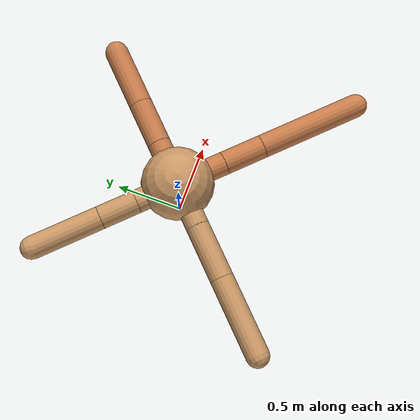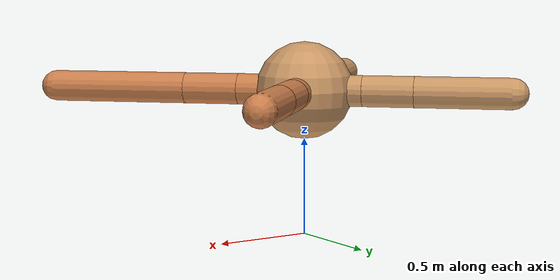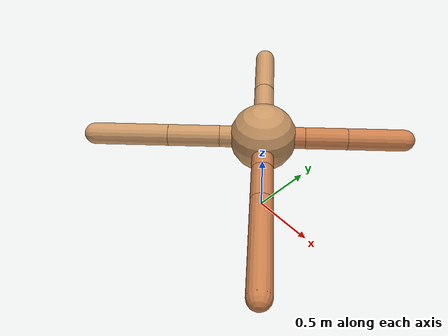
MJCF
<mujoco model="ant">
  <compiler angle="degree" coordinate="local" inertiafromgeom="true" />
  <option integrator="RK4" timestep="0.01" />
  <custom>
    <numeric data="0.0 0.0 0.55 1.0 0.0 0.0 0.0 0.0 1.0 0.0 -1.0 0.0 -1.0 0.0 1.0" name="init_qpos" />
  </custom>
  <default>
    <joint armature="1" damping="1" limited="true" />
    <geom conaffinity="0" condim="3" density="5.0" friction="1.5 0.1 0.1" margin="0.01" rgba="0.8 0.6 0.4 1" />
  </default>
  <worldbody>
    <body name="torso" pos="0 0 0.75">
      <geom name="torso_geom" pos="0 0 0" size="0.25" type="sphere" />

      <body name="front_left_leg" pos="0 0 0">
        <geom fromto="0.0 0.0 0.0 0.2193381365921722 0.2193381365921722 0.0" name="aux_1_geom" size="0.08" type="capsule" rgba=".8 .5 .3 1" />
        <body name="aux_1" pos="0.2193381365921722 0.2193381365921722 0.0">
          <joint axis="0 0 1" name="hip_1" pos="0.0 0.0 0.0" range="-40 40" type="hinge" />
          <geom fromto="0.0 0.0 0.0 0.22065655407092966 0.22065655407092966 0.0" name="left_leg_geom" size="0.08" type="capsule" rgba=".8 .5 .3 1" />
          <body pos="0.22065655407092966 0.22065655407092966 0.0" name="front_left_foot">
            <joint axis="-1 1 0" name="ankle_1" pos="0.0 0.0 0.0" range="30 100" type="hinge" />
            <geom fromto="0.0 0.0 0.0 0.2963039187735941 0.2963039187735941 0.0" name="left_ankle_geom" size="0.08" type="capsule" rgba=".8 .5 .3 1" />
          </body>
        </body>
      </body>
      <body name="front_right_leg" pos="0 0 0">
        <geom fromto="0.0 0.0 0.0 -0.21367990974631304 0.21367990974631304 0.0" name="aux_2_geom" size="0.08" type="capsule" />
        <body name="aux_2" pos="-0.21367990974631304 0.21367990974631304 0.0">
          <joint axis="0 0 1" name="hip_2" pos="0.0 0.0 0.0" range="-40 40" type="hinge" />
          <geom fromto="0.0 0.0 0.0 -0.186650274968583 0.186650274968583 0.0" name="right_leg_geom" size="0.08" type="capsule" />
          <body pos="-0.186650274968583 0.186650274968583 0.0" name="front_right_foot">
            <joint axis="1 1 0" name="ankle_2" pos="0.0 0.0 0.0" range="-100 -30" type="hinge" />
            <geom fromto="0.0 0.0 0.0 -0.3476233876846142 0.3476233876846142 0.0" name="right_ankle_geom" size="0.08" type="capsule" />
          </body>
        </body>
      </body>
      <body name="left_back_leg" pos="0 0 0">
        <geom fromto="0.0 0.0 0.0 -0.22849472579195887 -0.22849472579195887 0.0" name="aux_3_geom" size="0.08" type="capsule" />
        <body name="aux_3" pos="-0.22849472579195887 -0.22849472579195887 0.0">
          <joint axis="0 0 1" name="hip_3" pos="0.0 0.0 0.0" range="-40 40" type="hinge" />
          <geom fromto="0.0 0.0 0.0 -0.27082675656048155 -0.27082675656048155 0.0" name="back_leg_geom" size="0.08" type="capsule" />
          <body pos="-0.27082675656048155 -0.27082675656048155 0.0" name="left_back_foot">
            <joint axis="-1 1 0" name="ankle_3" pos="0.0 0.0 0.0" range="-100 -30" type="hinge" />
            <geom fromto="0.0 0.0 0.0 -0.3900353068480927 -0.3900353068480927 0.0" name="third_ankle_geom" size="0.08" type="capsule" />
          </body>
        </body>
      </body>
      <body name="right_back_leg" pos="0 0 0">
        <geom fromto="0.0 0.0 0.0 0.24496154532948042 -0.24496154532948042 0.0" name="aux_4_geom" size="0.08" type="capsule" rgba=".8 .5 .3 1" />
        <body name="aux_4" pos="0.24496154532948042 -0.24496154532948042 0.0">
          <joint axis="0 0 1" name="hip_4" pos="0.0 0.0 0.0" range="-40 40" type="hinge" />
          <geom fromto="0.0 0.0 0.0 0.20084573712824236 -0.20084573712824236 0.0" name="rightback_leg_geom" size="0.08" type="capsule" rgba=".8 .5 .3 1" />
          <body pos="0.20084573712824236 -0.20084573712824236 0.0" name="right_back_foot">
            <joint axis="1 1 0" name="ankle_4" pos="0.0 0.0 0.0" range="30 100" type="hinge" />
            <geom fromto="0.0 0.0 0.0 0.5025927852562787 -0.5025927852562787 0.0" name="fourth_ankle_geom" size="0.08" type="capsule" rgba=".8 .5 .3 1" />
          </body>
        </body>
      </body>
    </body>
  </worldbody>
  <actuator>
    <motor ctrllimited="true" ctrlrange="-1.0 1.0" joint="hip_4" gear="150" />
    <motor ctrllimited="true" ctrlrange="-1.0 1.0" joint="ankle_4" gear="150" />
    <motor ctrllimited="true" ctrlrange="-1.0 1.0" joint="hip_1" gear="150" />
    <motor ctrllimited="true" ctrlrange="-1.0 1.0" joint="ankle_1" gear="150" />
    <motor ctrllimited="true" ctrlrange="-1.0 1.0" joint="hip_2" gear="150" />
    <motor ctrllimited="true" ctrlrange="-1.0 1.0" joint="ankle_2" gear="150" />
    <motor ctrllimited="true" ctrlrange="-1.0 1.0" joint="hip_3" gear="150" />
    <motor ctrllimited="true" ctrlrange="-1.0 1.0" joint="ankle_3" gear="150" />
  </actuator>
</mujoco>
